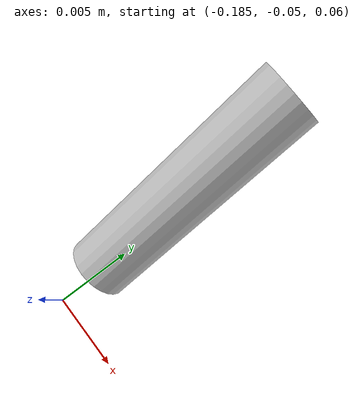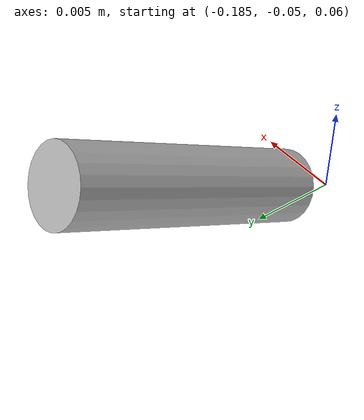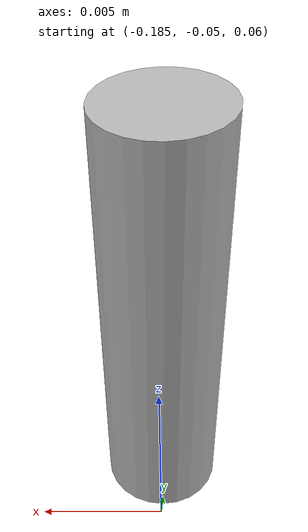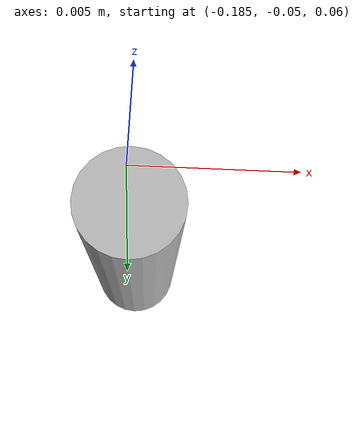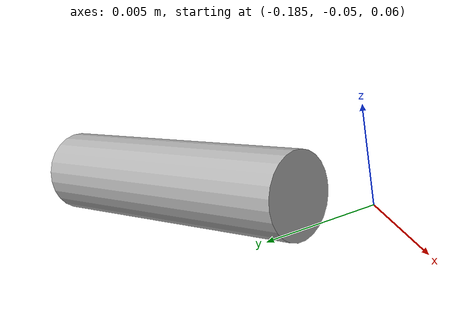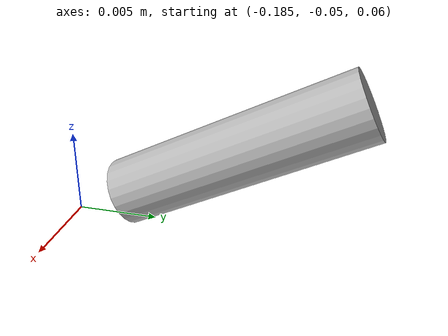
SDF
<?xml version="1.0"?>
<sdf version="1.4">
    <model name="grasp_object">
        <link name="object">
            <pose>-0.185 -0.04 0.065 90 0 0</pose>
            <inertial>
                <inertia>
                    <ixx>0.1</ixx>
                    <ixy>0</ixy>
                    <ixz>0</ixz>
                    <iyy>0.1</iyy>
                    <iyz>0</iyz>
                    <izz>0.1</izz>
                </inertia>
                <mass>0.2</mass>
            </inertial>
            <collision name="collision">
                <geometry>
                    <cylinder>
                        <radius>0.002</radius>
                        <length>0.01</length>
                    </cylinder>
                </geometry>
                <surface>
                    <friction>
                        <ode>
                            <mu>0.01</mu>
                            <mu2>0.01</mu2>
                        </ode>
                    </friction>
                </surface>
            </collision>
            <visual name="visual">
                <geometry>
                    <cylinder>
                        <radius>0.002</radius>
                        <length>0.015</length>
                    </cylinder>
                </geometry>
                <material>
                    <script>Gazebo/black</script>
                </material>
            </visual>
        </link>
    </model>
</sdf>
